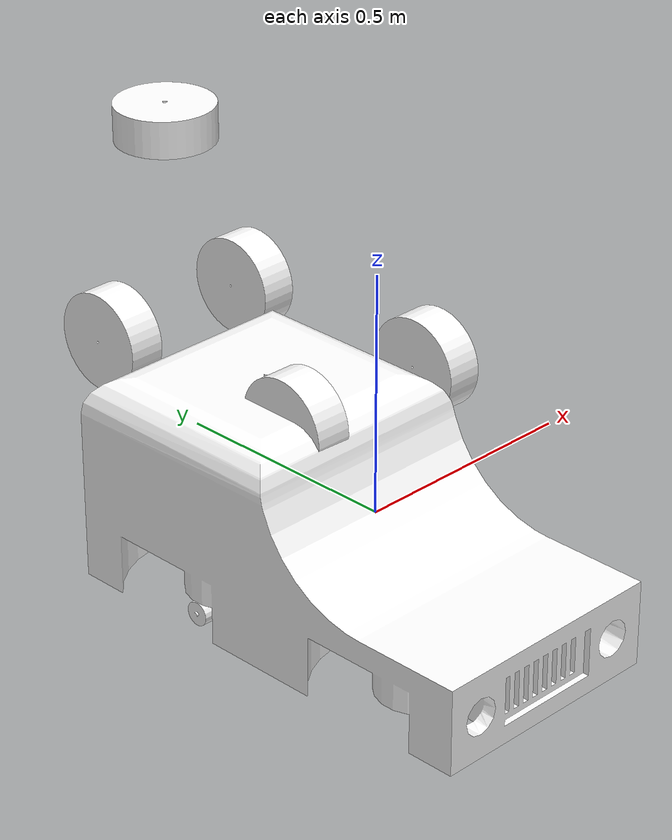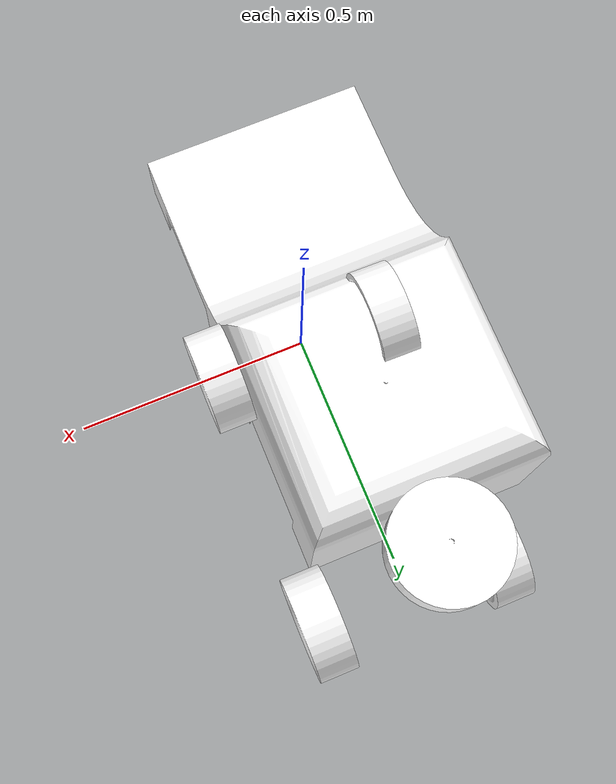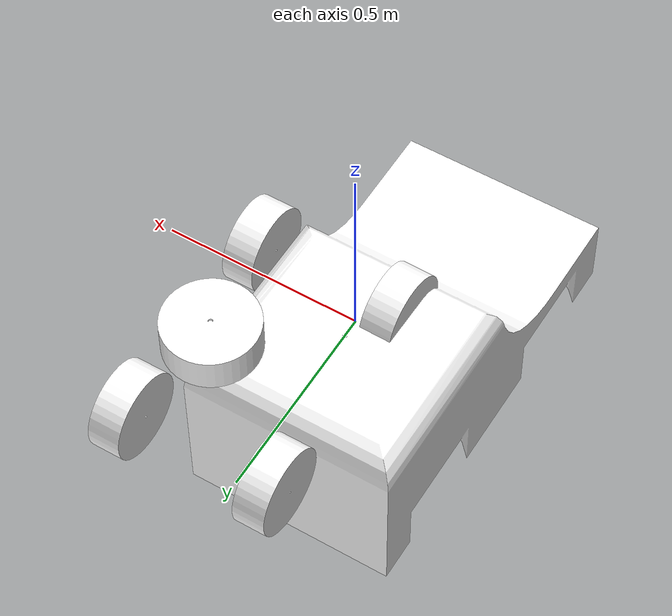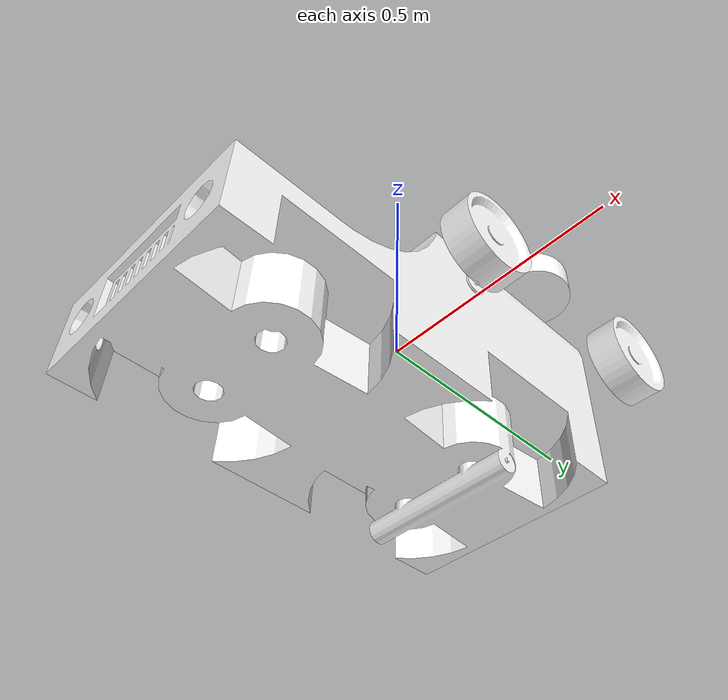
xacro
<?xml version="1.0" ?>
<robot
  name="car" xmlns:xacro="http://ros.org/wiki/xacro">
  <link name="dummy_link"></link>

  # Add this after base link
  <joint name="dummy_joint" type="fixed">
      <origin rpy="0 0 0" xyz="0 0 0" />
      <parent link="dummy_link"/>
      <child link="base_link"/>
  </joint>
  <link
    name="base_link">
    <inertial>
      <origin
        xyz="-0.0128918984763142 0.450966425452628 -0.431554811940461"
        rpy="0 0 0" />
      <mass
        value="130.703409436851" />
      <inertia
        ixx="9.48205837021825"
        ixy="0.000348574852501923"
        ixz="-0.0017160642521088"
        iyy="10.1981840585977"
        iyz="1.39608354050037"
        izz="4.24086791526909" />
    </inertial>
    <visual>
      <origin
        xyz="0 0 0"
        rpy="0 0 0" />
      <geometry>
        <mesh
          filename="package://car/meshes/base_link.STL" />
      </geometry>
      <material
        name="">
        <color
          rgba="1 1 1 1" />
      </material>
    </visual>
    <collision>
      <origin
        xyz="0 0 0"
        rpy="0 0 0" />
      <geometry>
        <mesh
          filename="package://car/meshes/base_link.STL" />
      </geometry>
    </collision>
  </link>
  <link
    name="lidar">
    <inertial>
      <origin
        xyz="-1.66533453693773E-16 1.11022302462516E-16 0.038105927654612"
        rpy="0 0 0" />
      <mass
        value="2.47069918222367" />
      <inertia
        ixx="0.0075722200531262"
        ixy="4.33680868994202E-19"
        ixz="1.4177815111934E-17"
        iyy="0.0075722200531262"
        iyz="-2.48131006824263E-17"
        izz="0.0127540906436804" />
    </inertial>
    <visual>
      <origin
        xyz="0 0 0"
        rpy="0 0 0" />
      <geometry>
        <mesh
          filename="package://car/meshes/lidar.STL" />
      </geometry>
      <material
        name="">
        <color
          rgba="1 1 1 1" />
      </material>
    </visual>
    <collision>
      <origin
        xyz="0 0 0"
        rpy="0 0 0" />
      <geometry>
        <mesh
          filename="package://car/meshes/lidar.STL" />
      </geometry>
    </collision>
  </link>
  <joint
    name="lidar_joint"
    type="continuous">
    <origin
      xyz="-0.012915 0.55481 0.6845"
      rpy="0 0 2.2174" />
    <parent
      link="base_link" />
    <child
      link="lidar" />
    <axis
      xyz="0 0 1" />
  </joint>
  <link
    name="right_rear_wheel">
    <inertial>
      <origin
        xyz="-1.11022302462516E-16 3.33066907387547E-16 0.0341988929643311"
        rpy="0 0 0" />
      <mass
        value="2.20373338840703" />
      <inertia
        ixx="0.00679098454718218"
        ixy="1.51788304147971E-18"
        ixz="-1.9305156683868E-18"
        iyy="0.00679098454718217"
        iyz="3.39493081395951E-18"
        izz="0.0118184008419413" />
    </inertial>
    <visual>
      <origin
        xyz="0 0 0"
        rpy="0 0 0" />
      <geometry>
        <mesh
          filename="package://car/meshes/right_rear_wheel.STL" />
      </geometry>
      <material
        name="">
        <color
          rgba="1 1 1 1" />
      </material>
    </visual>
    <collision>
      <origin
        xyz="0 0 0"
        rpy="0 0 0" />
      <geometry>
        <mesh
          filename="package://car/meshes/right_rear_wheel.STL" />
      </geometry>
    </collision>
  </link>
  <joint
    name="right_rear_wheel_joint"
    type="continuous">
    <origin
      xyz="-0.19072 0.57197 0.22706"
      rpy="1.5708 -0.93413 -1.5708" />
    <parent
      link="base_link" />
    <child
      link="right_rear_wheel" />
    <axis
      xyz="0 0 1" />
    <limit
      lower="0"
      upper="0"
      effort="0"
      velocity="0" />
    <mimic
      joint="left_rear_wheel_joint"
      multiplier="1"
      offset="0" />
  </joint>
  <link
    name="left_rear_wheel">
    <inertial>
      <origin
        xyz="-4.44089209850063E-16 -8.32667268468867E-17 0.034198892964329"
        rpy="0 0 0" />
      <mass
        value="2.20373338840704" />
      <inertia
        ixx="0.00679098454718218"
        ixy="-2.71050543121376E-20"
        ixz="-4.15014721197344E-18"
        iyy="0.00679098454718218"
        iyz="5.12280309725432E-18"
        izz="0.0118184008419413" />
    </inertial>
    <visual>
      <origin
        xyz="0 0 0"
        rpy="0 0 0" />
      <geometry>
        <mesh
          filename="package://car/meshes/left_rear_wheel.STL" />
      </geometry>
      <material
        name="">
        <color
          rgba="1 1 1 1" />
      </material>
    </visual>
    <collision>
      <origin
        xyz="0 0 0"
        rpy="0 0 0" />
      <geometry>
        <mesh
          filename="package://car/meshes/left_rear_wheel.STL" />
      </geometry>
    </collision>
  </link>
  <joint
    name="left_rear_wheel_joint"
    type="continuous">
    <origin
      xyz="0.16488 0.57197 0.22706"
      rpy="1.5708 -0.034289 1.5708" />
    <parent
      link="base_link" />
    <child
      link="left_rear_wheel" />
    <axis
      xyz="0 0 1" />
    <limit
      lower="0"
      upper="0"
      effort="0"
      velocity="0" />
  </joint>
  <link
    name="right_axel">
    <inertial>
      <origin
        xyz="-0.0215345255884777 -2.05502593310369E-07 -0.0412194584316649"
        rpy="0 0 0" />
      <mass
        value="0.343309256864881" />
      <inertia
        ixx="0.000302393340893422"
        ixy="1.18619617171983E-09"
        ixz="0.000116959746613945"
        iyy="0.000593149262079214"
        iyz="-1.78198026433145E-09"
        izz="0.000404179196007141" />
    </inertial>
    <visual>
      <origin
        xyz="0 0 0"
        rpy="0 0 0" />
      <geometry>
        <mesh
          filename="package://car/meshes/right_axel.STL" />
      </geometry>
      <material
        name="">
        <color
          rgba="1 1 1 1" />
      </material>
    </visual>
    <collision>
      <origin
        xyz="0 0 0"
        rpy="0 0 0" />
      <geometry>
        <mesh
          filename="package://car/meshes/right_axel.STL" />
      </geometry>
    </collision>
  </link>
  <joint
    name="right_axel_joint"
    type="revolute">
    <origin
      xyz="-0.101815028447533 0.0639685669045678 0.201656992507662"
      rpy="-3.14159265358978 0 -0.0192641027998058" />
    <parent
      link="base_link" />
    <child
      link="right_axel" />
    <axis
      xyz="0 0 1" />
    <limit
      lower="-0.24254"
      upper="0.28106"
      effort="0"
      velocity="0" />
  </joint>
  <link
    name="right_front_wheel">
    <inertial>
      <origin
        xyz="-3.88578058618805E-16 5.79397640976254E-15 0.0388480457107787"
        rpy="0 0 0" />
      <mass
        value="2.20373338840704" />
      <inertia
        ixx="0.00679098454718218"
        ixy="6.50521303491303E-19"
        ixz="-1.06217931585689E-18"
        iyy="0.00679098454718217"
        iyz="-3.30681662608079E-18"
        izz="0.0118184008419413" />
    </inertial>
    <visual>
      <origin
        xyz="0 0 0"
        rpy="0 0 0" />
      <geometry>
        <mesh
          filename="package://car/meshes/right_front_wheel.STL" />
      </geometry>
      <material
        name="">
        <color
          rgba="1 1 1 1" />
      </material>
    </visual>
    <collision>
      <origin
        xyz="0 0 0"
        rpy="0 0 0" />
      <geometry>
        <mesh
          filename="package://car/meshes/right_front_wheel.STL" />
      </geometry>
    </collision>
  </link>
  <joint
    name="right_front_wheel_joint"
    type="continuous">
    <origin
      xyz="-0.084251 0 -0.0254"
      rpy="1.5708 1.3589 -1.5708" />
    <parent
      link="right_axel" />
    <child
      link="right_front_wheel" />
    <axis
      xyz="0 0 1" />
    <limit
      lower="0"
      upper="0"
      effort="0"
      velocity="0" />
  </joint>
  <link
    name="left_axel">
    <inertial>
      <origin
        xyz="-0.0215345010339004 -2.23897531057005E-07 -0.0412194644195421"
        rpy="0 0 0" />
      <mass
        value="0.343309335035793" />
      <inertia
        ixx="0.000302393392753759"
        ixy="1.48778172553109E-09"
        ixz="0.000116959879485354"
        iyy="0.000593149368150714"
        iyz="-1.66748643075836E-09"
        izz="0.000404179409963257" />
    </inertial>
    <visual>
      <origin
        xyz="0 0 0"
        rpy="0 0 0" />
      <geometry>
        <mesh
          filename="package://car/meshes/left_axel.STL" />
      </geometry>
      <material
        name="">
        <color
          rgba="1 1 1 1" />
      </material>
    </visual>
    <collision>
      <origin
        xyz="0 0 0"
        rpy="0 0 0" />
      <geometry>
        <mesh
          filename="package://car/meshes/left_axel.STL" />
      </geometry>
    </collision>
  </link>
  <joint
    name="left_axel_joint"
    type="revolute">
    <origin
      xyz="0.0759849715524652 0.0639685660462591 0.201656992507661"
      rpy="3.14159265358978 0 3.13818799754791" />
    <parent
      link="base_link" />
    <child
      link="left_axel" />
    <axis
      xyz="0 0 1" />
    <limit
      lower="-0.25839"
      upper="0.2652"
      effort="0"
      velocity="0" />
  </joint>
  <link
    name="left_front_wheel">
    <inertial>
      <origin
        xyz="-7.49400541621981E-16 4.44089209850063E-16 0.0351221259560628"
        rpy="0 0 0" />
      <mass
        value="2.20373338840703" />
      <inertia
        ixx="0.00679098454718218"
        ixy="0"
        ixz="-1.92276479026726E-18"
        iyy="0.00679098454718217"
        iyz="-5.78862316153589E-18"
        izz="0.0118184008419413" />
    </inertial>
    <visual>
      <origin
        xyz="0 0 0"
        rpy="0 0 0" />
      <geometry>
        <mesh
          filename="package://car/meshes/left_front_wheel.STL" />
      </geometry>
      <material
        name="">
        <color
          rgba="1 1 1 1" />
      </material>
    </visual>
    <collision>
      <origin
        xyz="0 0 0"
        rpy="0 0 0" />
      <geometry>
        <mesh
          filename="package://car/meshes/left_front_wheel.STL" />
      </geometry>
    </collision>
  </link>
  <joint
    name="left_front_wheel_joint"
    type="continuous">
    <origin
      xyz="-0.087977 0 -0.0254"
      rpy="1.5708 1.1228 -1.5708" />
    <parent
      link="left_axel" />
    <child
      link="left_front_wheel" />
    <axis
      xyz="0 0 1" />
    <limit
      lower="0"
      upper="0"
      effort="0"
      velocity="0" />
  </joint>
   <ros2_control name="GazeboSystem" type="system">
 <hardware>
     <plugin>gazebo_ros2_control/GazeboSystem</plugin>
 </hardware>
 # Velocity Controllers

 <joint name="left_rear_wheel_joint">
     <command_interface name="velocity">
         <param name="min">-1000.0</param>
         <param name="max">1000.0</param>
     </command_interface>
     <state_interface name="position"/>
     <state_interface name="velocity"/>
 </joint>
<joint name="right_rear_wheel_joint">
    <command_interface name="velocity">
        <param name="min">-1000.0</param>
        <param name="max">1000.0</param>
    </command_interface>
    <state_interface name="position"/>
    <state_interface name="velocity"/>
</joint>
 <joint name="left_front_wheel_joint">
     <command_interface name="velocity">
         <param name="min">-1000.0</param>
         <param name="max">1000.0</param>
     </command_interface>
     <state_interface name="position"/>
     <state_interface name="velocity"/>
 </joint>
<joint name="right_front_wheel_joint">
    <command_interface name="velocity">
        <param name="min">-1000.0</param>
        <param name="max">1000.0</param>
    </command_interface>
    <state_interface name="position"/>
    <state_interface name="velocity"/>
</joint>

# Position Controller
 <joint name="left_axel_joint">
     <command_interface name="position">
         <param name="min">-3.14</param>
         <param name="max">3.14</param>
     </command_interface>
     <state_interface name="position"/>
     <state_interface name="velocity"/>
 </joint>
 <joint name="right_axel_joint">
     <command_interface name="position">
         <param name="min">-3.14</param>
         <param name="max">3.14</param>
     </command_interface>
     <state_interface name="position"/>
     <state_interface name="velocity"/>
 </joint>
 </ros2_control>

 <gazebo>
    <plugin filename="libgazebo_ros2_control.so" name="gazebo_ros2_control">
        <parameters>$(find car)/config/control.yaml</parameters>
    </plugin>
 </gazebo>

</robot>
